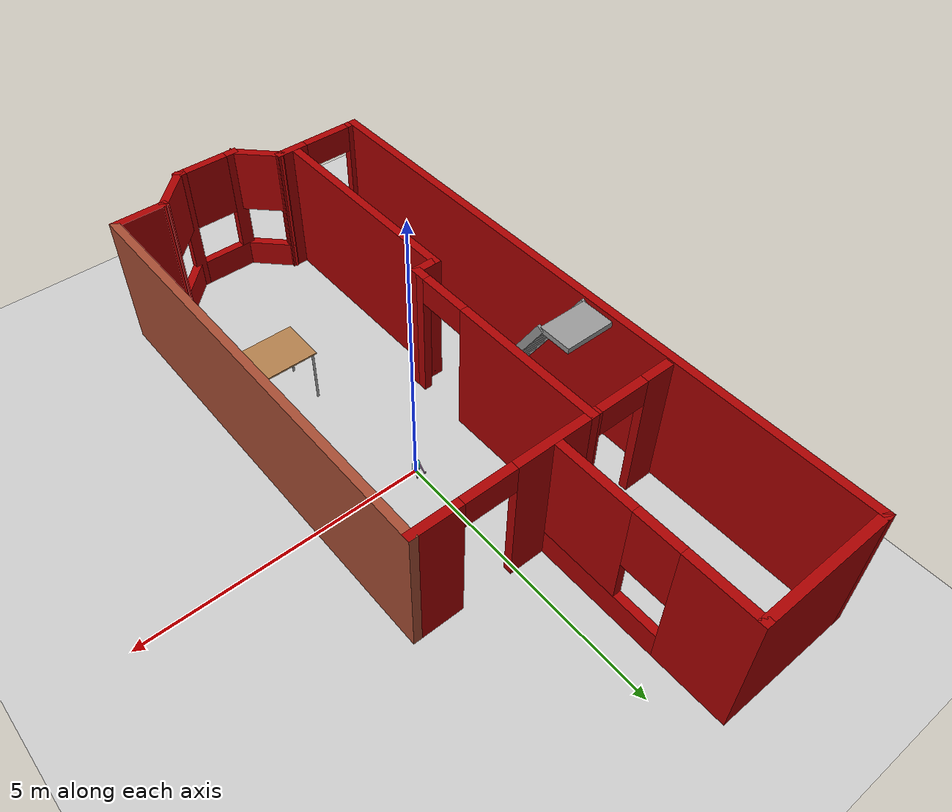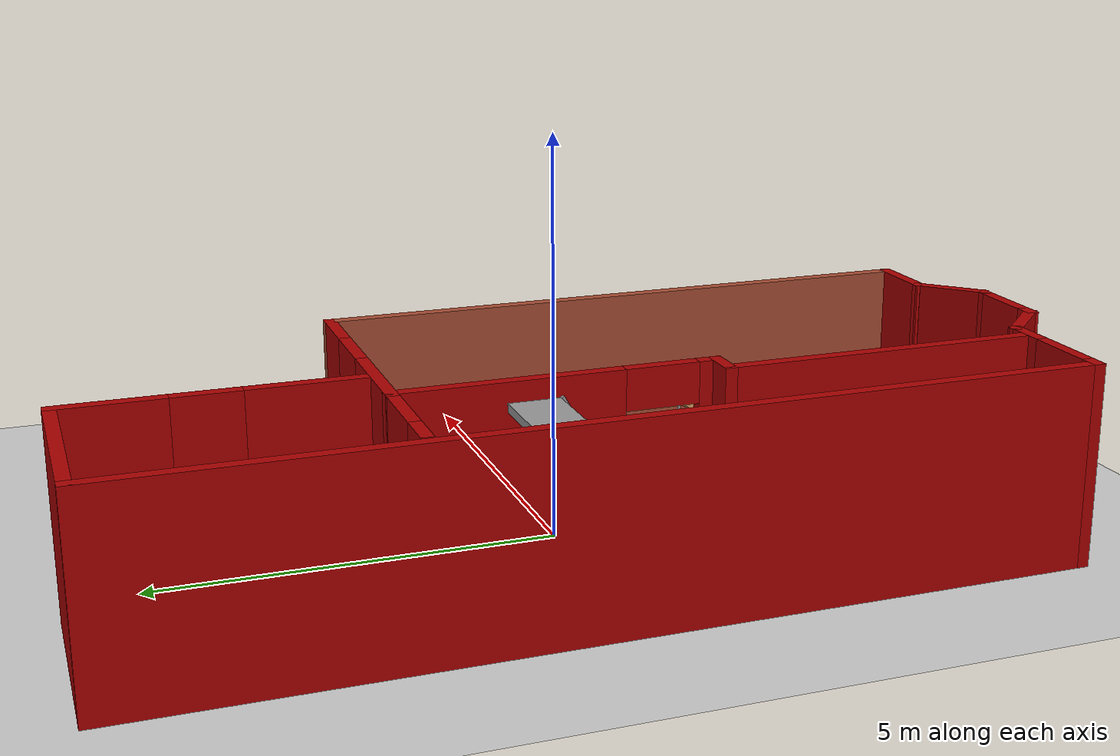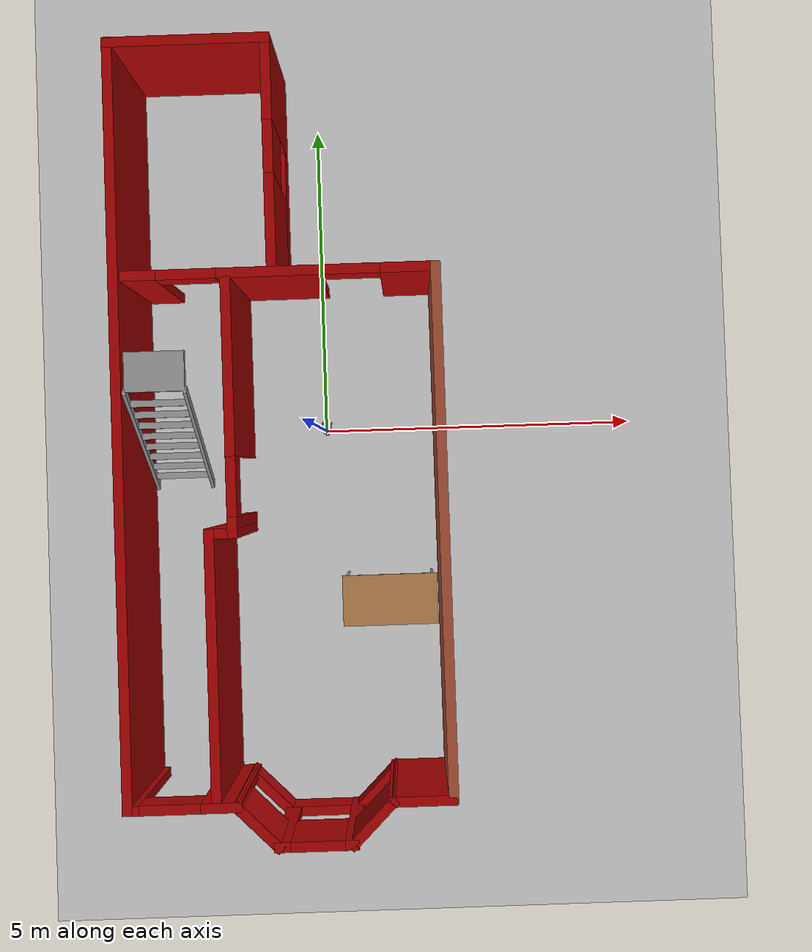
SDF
<sdf version="1.4">
 <world name="default">
  <plugin name="welcome" filename="libwelcome.so"/>
  <include><uri>model://ground_plane</uri></include>
  <include><uri>model://sun</uri></include>
  <include><uri>model://wheelie_robot_stable</uri></include>
  <include><uri>model://building_downstairs</uri></include>
  <include><uri>model://table</uri><static>true</static><pose>0.969 -2.728 0 0 0 0</pose></include>
  <include>
   <uri>model://ladder_60deg_0rails</uri>
   <static>true</static>
   <pose>-2.386 -0.795 0 0 0 0</pose>
  </include>
  <include>
   <name>obstacle1</name>
   <uri>model://whirly_obstacle</uri>
   <pose>0 -0.8 0 0 0 0</pose>
   <plugin name="spin_arm" filename="libspin_arm.so"/>
  </include>
  <include>
   <name>obstacle2</name>
   <uri>model://whirly_obstacle</uri>
   <pose>-0.69 -2.45 0 0 0 0</pose>
   <plugin name="spin_arm" filename="libspin_arm.so"/>
  </include>
 </world>
</sdf>
